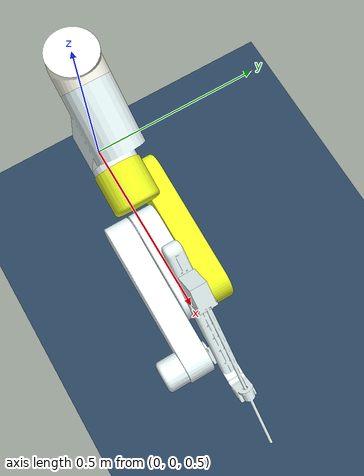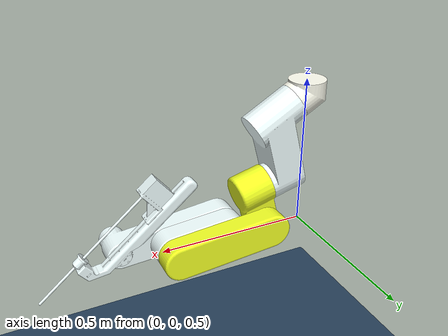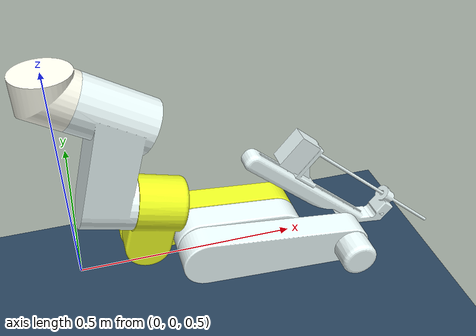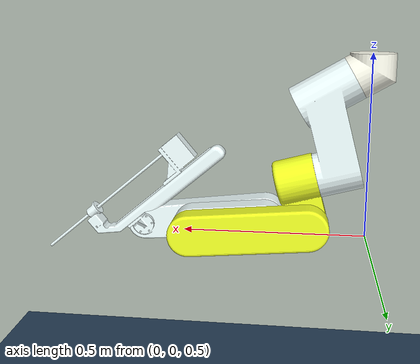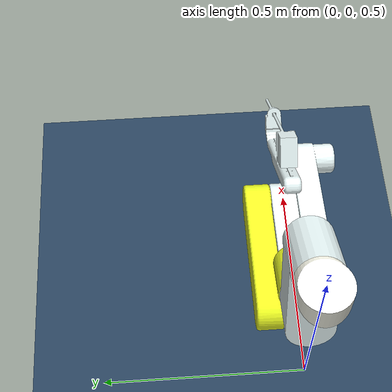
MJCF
<mujoco model="robot">

    <compiler angle="radian" inertiafromgeom="true" meshdir="meshes_mujoco/" />
    <option timestep="0.002"/>
    <size nuser_actuator="5"/>

    <asset>
        <mesh name="base" file="base.stl" />
        <mesh name="roll1" file="roll1.stl" />
        <mesh name="roll2" file="roll2.stl" />
        <mesh name="link1" file="link1.stl" />
        <mesh name="link2" file="link2.stl" />
        <mesh name="link3" file="link3.stl" />

        <texture name="floor_tex"   type="2d"            builtin="checker"  rgb1=".2 .3 .4"   rgb2=".1 .2 .3" width="100"        height="100" />
        <texture name="sky_tex"     type="skybox"        builtin="gradient" width="100"       height="100"    rgb1="1 1 1"       rgb2="0.3 0.3 0.8" />
        <material name='floor_mat'  texture="floor_tex"  shininess="0.8"    texrepeat="10 10" specular="0.7"  reflectance="0.5" />
    </asset>

    <worldbody>
        <light directional="true" cutoff="4" exponent="20" diffuse="1 1 1" specular="0 0 0" pos="1 1 3" dir="-.5 -0.75 -1.5"/>
        <geom name='floor' material="floor_mat" pos='0 0 0' size='2.5 2.5 0.1'  type='plane' />

        <body name="base" pos="0 0 1">
            <inertial pos="0.00201925 8.10402e-07 -0.0438399" quat="0.415116 0.414461 -0.572937 0.572402" mass="0.95683" diaginertia="0.00167595 0.00152497 0.0014741" />
            <geom type="mesh" rgba="1 1 0.941187 1" mesh="base" />
            <body name="roll1" pos="0.1862 0 -0.1475" quat="0.5 0 0.866025 0">
                <inertial pos="0.0878443 -3.55008e-06 -0.05009" quat="0.588609 0.391924 0.392126 0.588364" mass="4.7417" diaginertia="0.0481064 0.0462234 0.0117439" />
                <joint name="roll1" pos="0 0 0" axis="0 0 1" limited="true" range="-3 3" damping="100"/>
                <geom type="mesh" rgba="0.94 1 1 1" mesh="roll1" />
                <body name="roll2" pos="0.15587 0 0.155" quat="0.991445 0 -0.130526 0">
                    <inertial pos="0.0660812 0.0457368 0.0366581" quat="0.543617 -0.0274505 0.104882 0.832302" mass="8.11253" diaginertia="0.140649 0.121949 0.0325068" />
                    <joint name="roll2" pos="0 0 0" axis="0 0 1" limited="true" range="-3 3" damping="100"/>
                    <geom type="mesh" rgba="0.94 1 0.14 1" mesh="roll2" />
                    <body name="link1" pos="0.06078 -0.029 0.25714" quat="0.45452 -0.454519 -0.541675 -0.541675">
                        <inertial pos="-0.100837 -3.57571e-08 0.0341786" quat="0 0.705581 0 0.708629" mass="2.1924" diaginertia="0.0177068 0.0164509 0.00301792" />
                        <joint name="link1" pos="0 0 0" axis="0 0 1" limited="true" range="-3 3" damping="100"/>
                        <geom type="mesh" rgba="0.94 1 1 1" mesh="link1" />
                        <body name="link2" pos="-0.2 0 -0.071">
                            <inertial pos="0.189805 3.3424e-06 0.0252509" quat="0.000344187 0.733789 0.000371754 0.679377" mass="3.96335" diaginertia="0.0688985 0.0686937 0.00586623" />
                            <joint name="link2" pos="0 0 0" axis="0 0 1" limited="true" range="-3 3" damping="100"/>
                            <geom type="mesh" rgba="0.94 1 1 1" mesh="link2" />
                            <body name="link3" pos="0.35 0 0.077" quat="0.953674 0 0 0.300842">
                                <inertial pos="-0.0943417 -0.0667751 0.0231825" quat="0.0393095 0.710357 0.0171264 0.702534" mass="1.86206" diaginertia="0.0264599 0.0245244 0.00242496" />
                                <joint name="link3" pos="0 0 0" axis="0 0 1" limited="true" range="-3 3" damping="100"/>
                                <geom type="mesh" rgba="0.94 1 1 1" mesh="link3" />
                            </body>
                        </body>
                    </body>
                </body>
            </body>
        </body>
    </worldbody>

    <equality>
        <joint name="link1_link2" joint1="link1" joint2="link2" polycoef="0 -1 0 0 0"/>
        <joint name="link1_link3" joint1="link1" joint2="link3" polycoef="0 1 0 0 0"/>
    </equality>
    <actuator>
        <position name="roll1"      joint="roll1"       kp="870" forcerange="-87 87" ctrlrange="-2.9671 2.9671"/> <!-- velocity="2.1750" -->
        <position name="roll2"      joint="roll2"       kp="870" forcerange="-87 87" ctrlrange="-2.8326 2.8326"/> <!-- velocity="2.1750" -->
        <position name="link1"      joint="link1"       kp="870" forcerange="-87 87" ctrlrange="-2.8326 2.8326"/> <!-- velocity="2.1750" -->
    </actuator>

</mujoco>
